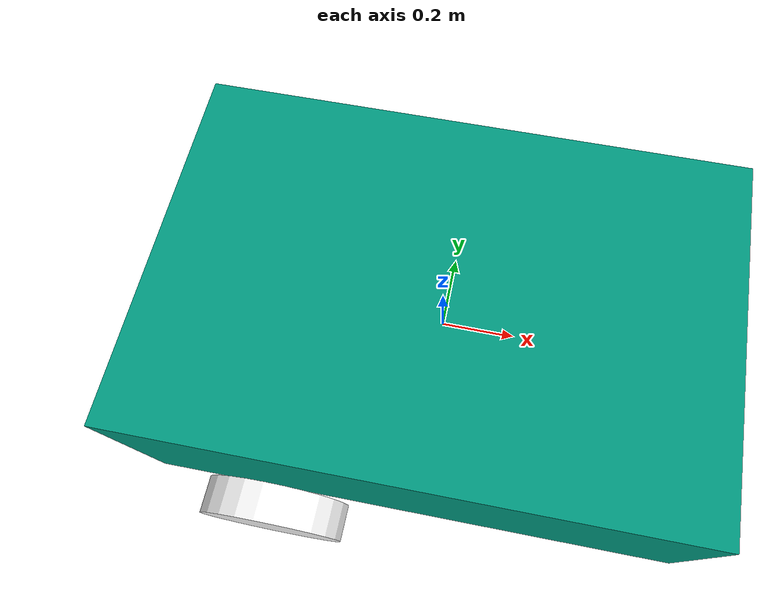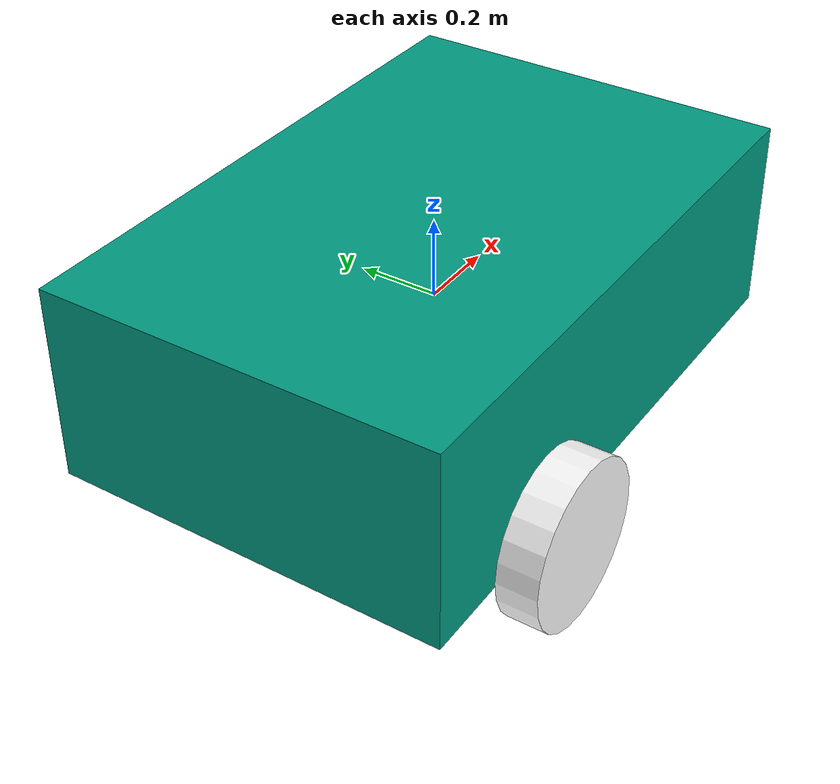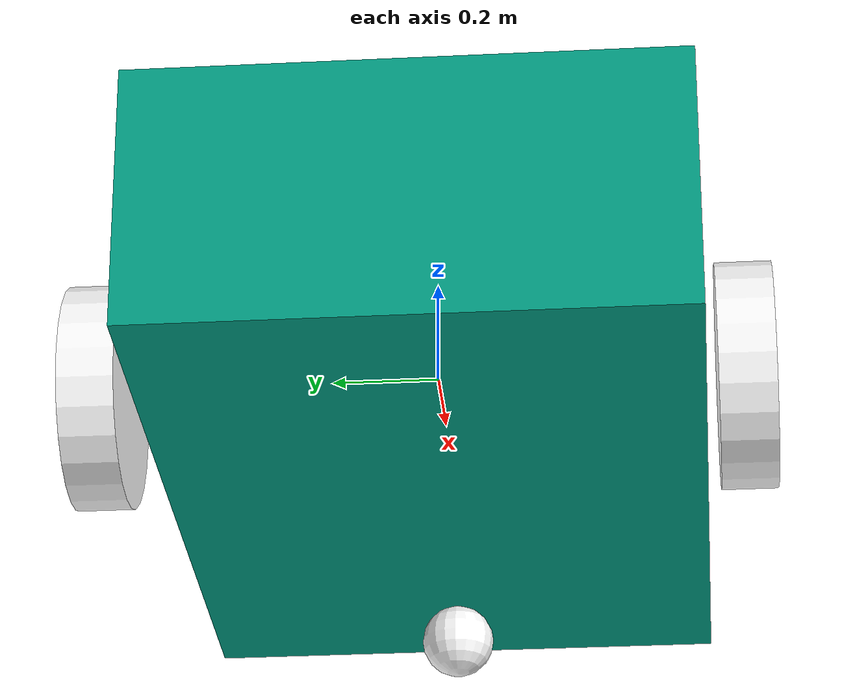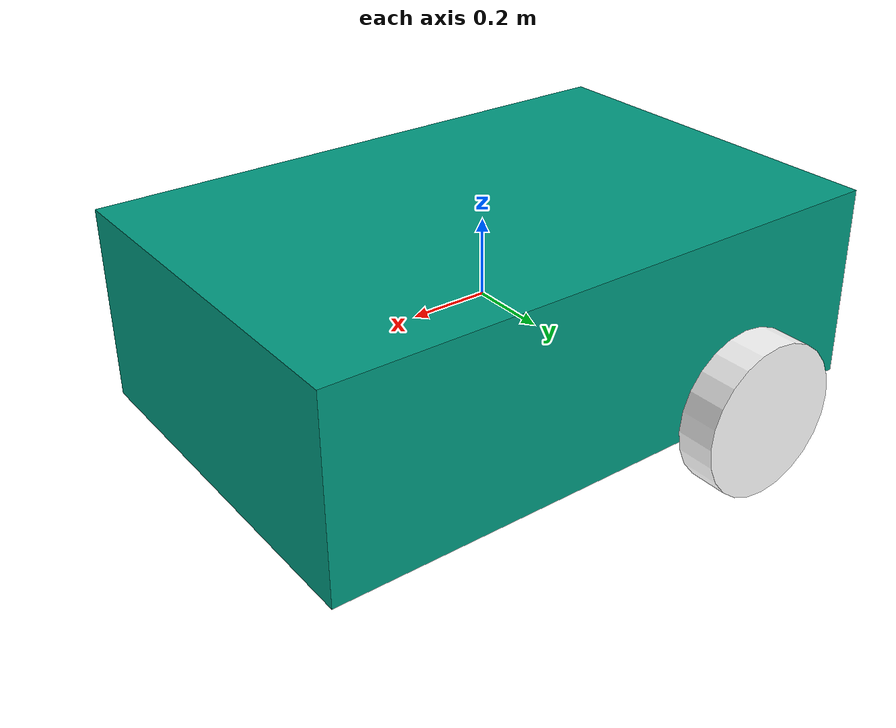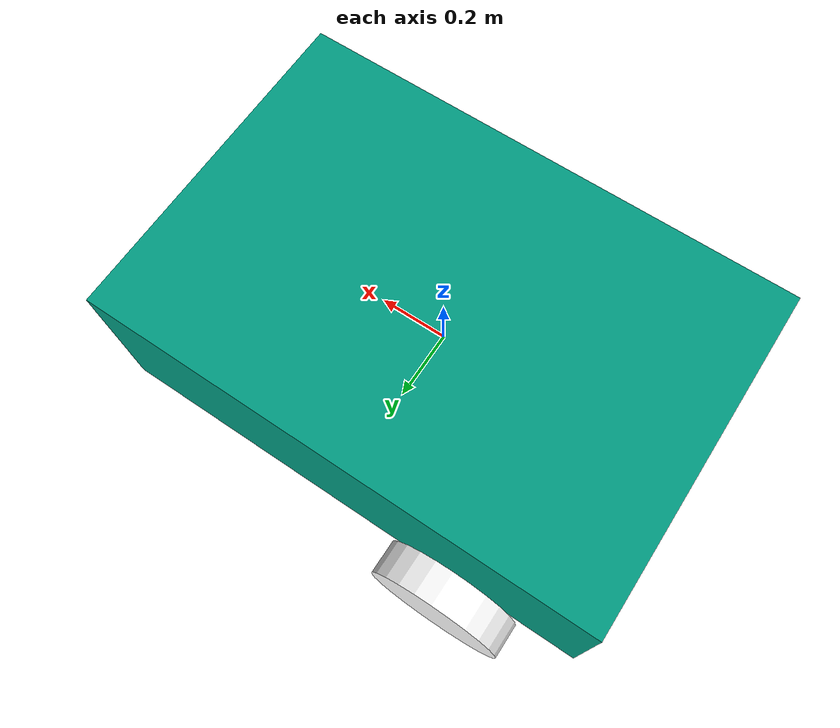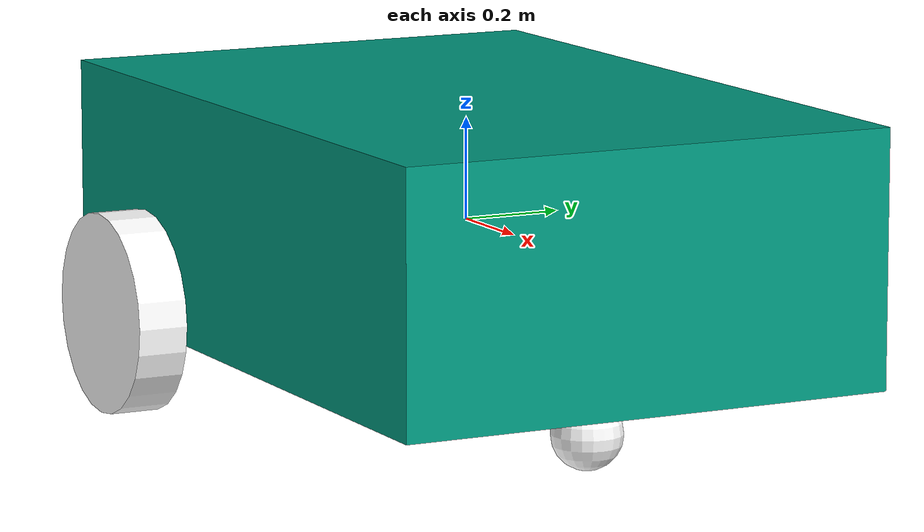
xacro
<?xml version="1.0"?>

<robot name="smart_diffbot" xmlns:xacro="http://ros.org/wiki/xacro">

  <!-- Arguments -->
  <xacro:arg name="sim" default="true" />
  <xacro:arg name="camera" default="true" />
  <xacro:arg name="color" default="SaxionGreen" />
  <xacro:arg name="robot_name" default="smart_diffbot" />
  <xacro:arg name="namespace" default="" />
  <xacro:arg name="frame_prefix" default="" />

  <!-- Utils -->
  <xacro:include filename="$(find smart_diffbot_description)/model/urdf/utils.urdf.xacro" />

  <!-- Robot model -->
  <xacro:include filename="$(find smart_diffbot_description)/model/urdf/model.urdf.xacro" />

  <!-- Real hardware interface -->
  <xacro:unless value="$(arg sim)">
    <xacro:include filename="$(find smart_diffbot_description)/model/urdf/real_hardware_interface.urdf.xacro" />
  </xacro:unless>

  <!-- Simulation hardware interface -->
  <xacro:if value="$(arg sim)">
    <xacro:include filename="$(find smart_diffbot_description)/model/urdf/sim_hardware_interface.urdf.xacro" />
  </xacro:if>

</robot>

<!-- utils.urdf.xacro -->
<robot xmlns:xacro="http://ros.org/wiki/xacro">

  <!-- Materials -->
  <material name="white">
    <color rgba="1 1 1 1"/>
  </material>

  <material name="red">
    <color rgba="1 0 0 1"/>
  </material>

  <material name="green">
    <color rgba="0 1 0 1"/>
  </material>

  <material name="blue">
    <color rgba="0 0 1 1"/>
  </material>

  <material name="yellow">
    <color rgba="1 1 0 1"/>
  </material>

  <material name="black">
    <color rgba="0 0 0 1"/>
  </material>

  <material name="SaxionGreen">
    <color rgba="0 0.612 0.510 1"/>
  </material>

  <!-- Inertia macros -->
  <xacro:macro name="box_inertia" params="m w h d">
    <inertial>
      <origin xyz="0 0 0" rpy="${pi/2} 0 ${pi/2}"/>
      <mass value="${m}"/>
      <inertia ixx="${(m/12) * (h*h + d*d)}" ixy="0.0" ixz="0.0" iyy="${(m/12) * (w*w + d*d)}" iyz="0.0" izz="${(m/12) * (w*w + h*h)}"/>
    </inertial>
  </xacro:macro>

  <xacro:macro name="cylinder_inertia" params="m r h">
    <inertial>
      <origin xyz="0 0 0" rpy="${pi/2} 0 0" />
      <mass value="${m}"/>
      <inertia ixx="${(m/12) * (3*r*r + h*h)}" ixy = "0" ixz = "0" iyy="${(m/12) * (3*r*r + h*h)}" iyz = "0" izz="${(m/2) * (r*r)}"/>
    </inertial>
  </xacro:macro>

  <!-- Wheel macro -->
  <xacro:macro name="wheel" params="name width radius mass color">
    <link name="${name}">
      <visual>
        <origin xyz="0 0 0" rpy="${pi/2} 0 0"/>
        <geometry>
          <cylinder length="${width}" radius="${radius}"/>
        </geometry>
        <material name="${color}" />
      </visual>
      <collision>
        <origin xyz="0 0 0" rpy="${pi/2} 0 0"/>
        <geometry>
          <cylinder length="${width}" radius="${radius}"/>
        </geometry>
      </collision>
    <xacro:cylinder_inertia m="${mass}" r="${radius}" h="${width}"/>
    </link>
  </xacro:macro>

</robot>

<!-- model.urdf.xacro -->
<robot xmlns:xacro="http://ros.org/wiki/xacro">

  <!-- Properties -->
  <xacro:property name="base_length" value="1.5"/>
  <xacro:property name="base_width" value="1.0"/>
  <xacro:property name="base_height" value="0.5"/>
  <xacro:property name="wheel_radius" value="0.2"/>
  <xacro:property name="wheel_width" value="0.1"/>
  <xacro:property name="wheel_suspension" value="0.05"/>
  <xacro:property name="wheel_spacing" value="0.02"/>
  <xacro:property name="caster_radius" value="0.07"/>

  <!-- Links -->
  <link name="base_link">
    <visual>
      <origin xyz="0 0 0" rpy="0 0 0"/>
      <geometry>
        <box size="${base_length} ${base_width} ${base_height}" />
      </geometry>
      <material name="$(arg color)" />
    </visual>
    <collision>
      <origin xyz="0 0 0" rpy="0 0 0"/>
      <geometry>
        <box size="${base_length} ${base_width} ${base_height}" />
      </geometry>
    </collision>
    <xacro:box_inertia m="30.0" w="${base_width}" d="${base_length}" h="${base_height}"/>
  </link>

  <link name="base_footprint"/>
  <link name="imu_link"/>
  <link name="navsat_link"/>

  <xacro:if value="$(arg camera)">
    <link name="camera_link"/>
  </xacro:if>

  <xacro:wheel name="left_wheel" width="${wheel_width}" radius="${wheel_radius}" mass="1.0" color="white"/>
  <xacro:wheel name="right_wheel" width="${wheel_width}" radius="${wheel_radius}" mass="1.0" color="white"/>

  <link name="caster">
    <visual>
      <origin xyz="0 0 0" rpy="0 0 0"/>
      <geometry>
        <sphere radius="${caster_radius}"/>
      </geometry>
      <material name="white" />
    </visual>
    <collision>
      <origin xyz="0 0 0" rpy="0 0 0"/>
      <geometry>
        <sphere radius="${caster_radius}"/>
      </geometry>
    </collision>
    <xacro:box_inertia m="0.5" w="${base_width}" d="${base_length}" h="${base_height}"/>
  </link>

  <!-- Joints -->
  <joint name="footprint_joint" type="fixed">
      <origin xyz="0 0 ${- base_height/2.0 - wheel_radius + wheel_suspension}" rpy="0 0 0"/>
      <parent link="base_link"/>
      <child link="base_footprint"/>
  </joint>

  <xacro:if value="$(arg camera)">
    <joint name="camera_joint" type="fixed">
      <origin xyz="0 0 ${base_height/2.0 + 0.30}" rpy="0 0 0"/>
      <parent link="base_link"/>
      <child link="camera_link"/>
    </joint>
  </xacro:if>

  <joint name="imu_joint" type="fixed">
    <origin xyz="0 0 0" rpy="0 0 0"/>
    <parent link="base_link"/>
    <child link="imu_link"/>
  </joint>

  <joint name="navsat_joint" type="fixed">
    <origin xyz="0 0 0" rpy="0 0 0"/>
    <parent link="base_link"/>
    <child link="navsat_link"/>
  </joint>

  <joint name="left_wheel_joint" type="continuous">
    <parent link="base_link"/>
    <child link="left_wheel"/>
    <origin xyz="${-base_length/4.0} ${base_width/2.0 + wheel_width/2.0 + wheel_spacing} ${-base_height/2.0 + wheel_suspension}" rpy="0 0 0"/>
    <axis xyz="0 1 0" rpy="0 0 0"/>
  </joint>

  <joint name="right_wheel_joint" type="continuous">
    <parent link="base_link"/>
    <child link="right_wheel"/>
    <origin xyz="${-base_length/4.0} -${base_width/2.0 + wheel_width/2.0 + wheel_spacing} ${-base_height/2.0 + wheel_suspension}" rpy="0 0 0"/>
    <axis xyz="0 1 0" rpy="0 0 0"/>
  </joint>

  <joint name="caster_joint" type="fixed">
    <parent link="base_link"/>
    <child link="caster"/>
    <origin xyz="${base_length/3.0} 0 ${-base_height/2.0 + wheel_suspension - wheel_radius + caster_radius}" rpy="0 0 0"/>
  </joint>

</robot>
